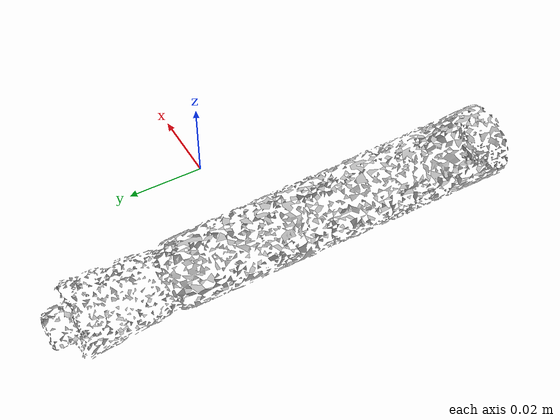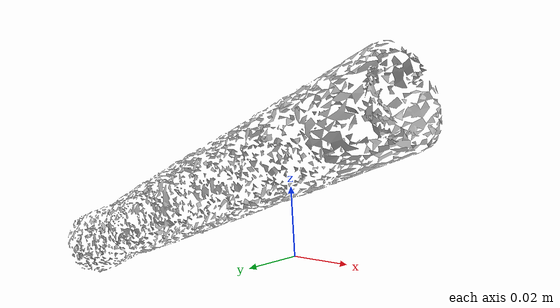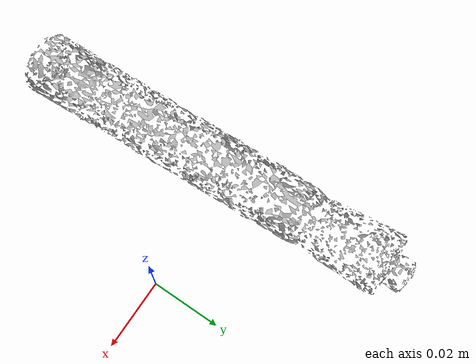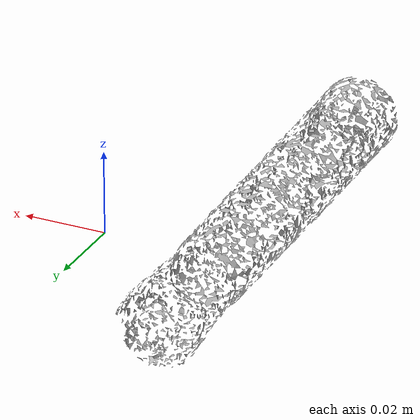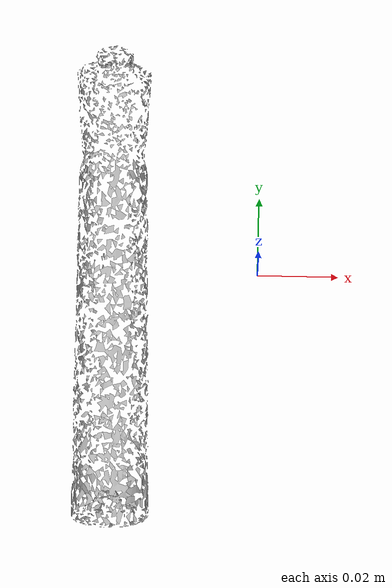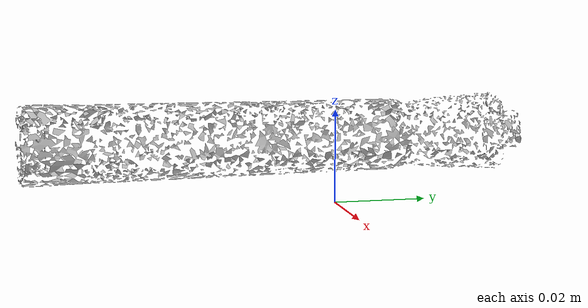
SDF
<?xml version='1.0'?>
<sdf version="1.4">
  <model name="large_marker">
    <static>false</static>
    <link name="link">
      <inertial>
        <pose>-0.035725124851894 -0.00788077074326952 0.009018296996191045 -1.5699074828201007 0.9271848404226295 0.021516163271664623</pose>
        <mass>2.7399944924772163e-05</mass>
        <inertia>
          <ixx>3.0985440909539734e-08</ixx>
          <ixy>6.790944603058866e-24</ixy>
          <ixz>-1.082212936072932e-25</ixz>
          <iyy>3.098119463302472e-08</iyy>
          <iyz>1.821983724886016e-26</iyz>
          <izz>1.0631513526588337e-09</izz>
        </inertia>
      </inertial>
      <collision name="collision">
        <geometry>
          <mesh>
            <!-- Use a downsampled mesh for collisions -->
            <uri>model://040_large_marker/downsampled.obj</uri>
	        </mesh>
        </geometry>
        <surface>
      </surface>
      </collision>
      <visual name="visual">
        <geometry>
          <mesh>
            <uri>model://040_large_marker/google_16k/textured.obj</uri>
	        </mesh>
        </geometry>
        <material>
          <script>
            <uri>model://040_large_marker/large_marker.material</uri>
            <name>large_marker</name>
          </script>
        </material>
      </visual>
    </link>
  </model>
</sdf>
